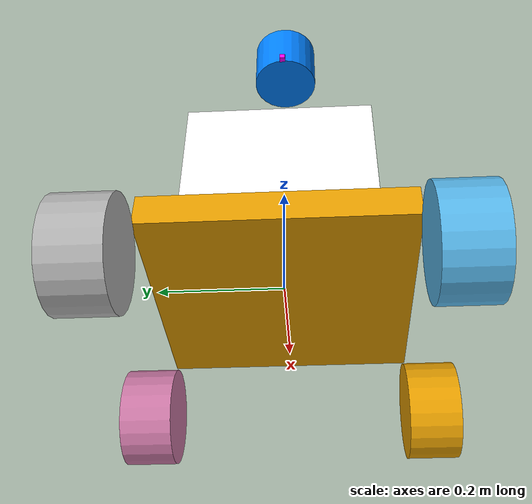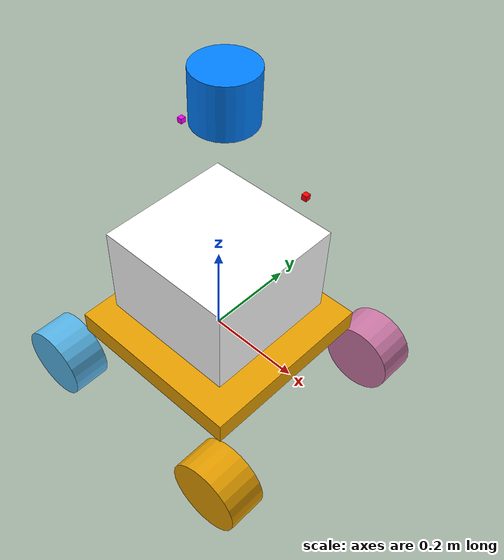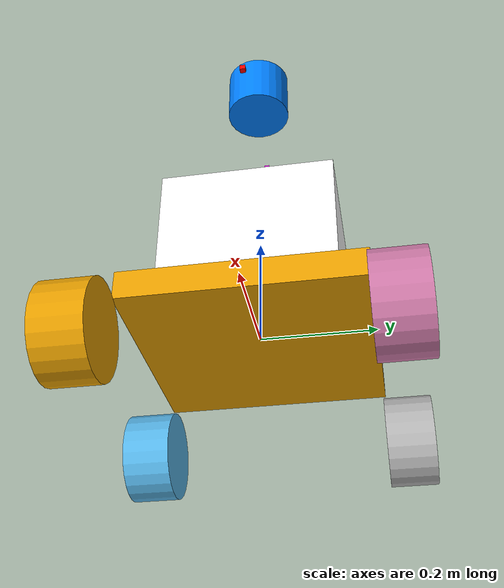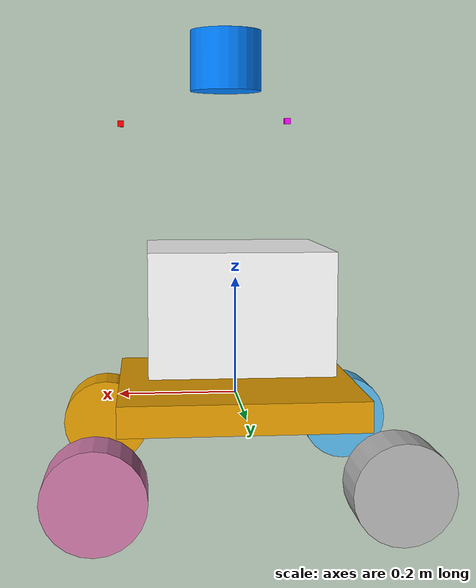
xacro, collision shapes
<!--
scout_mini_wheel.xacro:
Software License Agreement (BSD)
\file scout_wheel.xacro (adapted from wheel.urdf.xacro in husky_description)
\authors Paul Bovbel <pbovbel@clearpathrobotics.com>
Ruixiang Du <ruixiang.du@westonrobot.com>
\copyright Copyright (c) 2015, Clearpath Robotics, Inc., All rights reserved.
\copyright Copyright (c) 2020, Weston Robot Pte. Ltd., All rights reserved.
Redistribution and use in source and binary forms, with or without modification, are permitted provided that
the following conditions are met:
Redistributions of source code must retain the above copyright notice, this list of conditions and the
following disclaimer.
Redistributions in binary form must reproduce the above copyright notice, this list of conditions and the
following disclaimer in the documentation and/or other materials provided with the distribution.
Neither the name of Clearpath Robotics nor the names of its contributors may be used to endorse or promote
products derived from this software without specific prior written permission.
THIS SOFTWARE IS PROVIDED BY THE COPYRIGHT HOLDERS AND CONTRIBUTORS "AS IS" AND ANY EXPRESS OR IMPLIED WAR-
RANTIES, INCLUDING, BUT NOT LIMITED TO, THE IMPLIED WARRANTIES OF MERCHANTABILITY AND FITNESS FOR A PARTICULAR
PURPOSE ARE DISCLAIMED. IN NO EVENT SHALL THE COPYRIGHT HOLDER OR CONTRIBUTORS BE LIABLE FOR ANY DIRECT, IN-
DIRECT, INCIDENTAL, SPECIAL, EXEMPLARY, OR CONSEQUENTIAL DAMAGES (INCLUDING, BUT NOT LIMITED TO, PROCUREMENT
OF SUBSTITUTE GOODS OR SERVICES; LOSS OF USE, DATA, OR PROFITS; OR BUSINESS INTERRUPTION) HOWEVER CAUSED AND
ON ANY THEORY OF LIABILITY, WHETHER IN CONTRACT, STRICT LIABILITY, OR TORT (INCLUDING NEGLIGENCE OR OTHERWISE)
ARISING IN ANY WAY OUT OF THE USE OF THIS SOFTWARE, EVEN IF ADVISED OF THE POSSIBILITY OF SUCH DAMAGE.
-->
<?xml version="1.0"?>

<robot name="scout_mini"
    xmlns:xacro="http://ros.org/wiki/xacro">

    <xacro:arg name="robot_namespace" default="/" />

    <xacro:include filename="$(find scout_description)/urdf/scout_mini_wheel.xacro" />

    <!-- Variables -->
    <xacro:property name="M_PI" value="3.14159"/>

    <!-- Vehicle Geometries -->
    <xacro:property name="base_x_size" value="0.6200000" />
    <xacro:property name="base_y_size" value="0.585000" />
    <xacro:property name="base_z_size" value="0.235000" />

    <xacro:property name="wheelbase" value="0.463951"/>
    <xacro:property name="track" value="0.416503"/>
    <xacro:property name="wheel_vertical_offset" value="-0.100998" />

    <xacro:property name="wheel_diameter" value="0.16" />
    <xacro:property name="wheel_width" value="0.084" />

    <xacro:property name="wheel_length" value="0.8e-01" />
    <xacro:property name="wheel_radius" value="1.600e-01" />

    <!-- Base link -->
    <link name="base_link">
        <inertial>
            <origin
                xyz="0.0 0.0 0.0"
                rpy="0 0 0" />
            <mass
                value="10" />
            <inertia ixx="0.1354" ixy="0" ixz="0"
             iyy="0.1354" iyz="0" izz="0.2667"/>
        </inertial>
        <visual>
            <origin
                    xyz="0 0 0.0"
                    rpy="1.57 0 -1.57" />
            <geometry>
                <mesh filename="package://scout_description/meshes/scout_mini_base_link2.dae" />
            </geometry>
        </visual>
        <collision>
            <origin
                    xyz="0 0 0"
                    rpy="0 0 0" />
          <geometry>
              <box size="0.4 0.4 0.05"/>
          </geometry>
        </collision>
    </link>

    <link name="box_link">
        <inertial>
            <origin
                xyz="0.0 0.0 0.0"
                rpy="0 0 3.14159" />
            <mass
                value="5" />
            <inertia
                ixx="0.054166666667"
                ixy="0"
                ixz="0"
                iyy="0.075"
                iyz="0"
                izz="0.054166666667"/>
            </inertial>
        <visual>
            <origin
                    xyz="0.0 0.0 0.0"
                    rpy="0.0 0.0 0.0" />
            <geometry>
                <mesh filename="package://scout_description/meshes/box-parts/box.stl" />
            </geometry>
            <material name = "white">
            <color rgba="1 1 1 1" />
            </material>
        </visual>
        <collision>
            <origin
                    xyz="0 0 0.1"
                    rpy="1.57 0 1.57" />
          <geometry>
            <box size="0.3 0.2 0.3"/>
          </geometry>
        </collision>
    </link>

    <joint name="box_joint" type="fixed">
        <origin xyz="0 0 0.055" rpy="0 0 0" />
        <parent link="base_link" />
        <child link="box_link" />
    </joint>

    <link name="laser_link">
        <visual>
            <origin
                    xyz="0.0 0.0 0.0"
                    rpy="0.0 0.0 0.0" />
            <geometry>
                <mesh filename="package://scout_description/meshes/box-parts/lidar.stl" />
            </geometry>
            <material name = "cyan">
            <color rgba="0 0.5 1 1" />
            </material>
        </visual>
        <collision>
            <origin
                    xyz="0 0 0.31"
                    rpy="0 0 0" />
          <geometry>
                    <cylinder radius="0.06" length="0.1"/>
          </geometry>
        </collision>
    </link>

    <joint name="laser_joint" type="fixed">
        <origin xyz="0.015732 -0.001804 0.200816" rpy="0 0 0" />
        <parent link="box_link" />
        <child link="laser_link" />
    </joint>

    <link name="camera_link">
        <inertial>
            <origin
                xyz="0.0 0.0 0.0"
                rpy="0 0 0" />
            <mass
                value="0.1" />
            <inertia
                ixx="0.0088463"
                ixy="2.0356E-05"
                ixz="-0.00047464"
                iyy="0.0066478"
                iyz="-6.9288E-06"
                izz="0.01219" />
        </inertial>
        <visual>
            <origin
                    xyz="0.0 0.0 0.0"
                    rpy="0.0 0.0 0.0" />
            <geometry>
                <mesh filename="package://scout_description/meshes/box-parts/camera.stl" />
            </geometry>
            <material name = "red">
            <color rgba="1 0 0 1" />
            </material>
        </visual>
        <collision>
            <origin
                    xyz="0 0 0.31"
                    rpy="0 0 0" />
          <geometry>
                    <box size="0.01 0.01 0.01"/>
          </geometry>
        </collision>
    </link>

    <joint name="camera_joint" type="fixed">
        <origin xyz="0.192646 -0.001255 0.096" rpy="0 0 0" />
        <parent link="box_link" />
        <child link="camera_link" />
    </joint>

    <link name="camera_optical_link">
    </link>
    <joint name="camera_optical_joint" type="fixed">
        <origin xyz="0.01495 0 0.0125" rpy="0 0 0" />
        <parent link="camera_link" />
        <child link="camera_optical_link" />
    </joint>

    <link name="monitor_link">
        <inertial>
            <origin
                xyz="0.0 0.0 0.0"
                rpy="0 0 0" />
            <mass
                value="0.1" />
            <inertia
                ixx="0.0088463"
                ixy="2.0356E-05"
                ixz="-0.00047464"
                iyy="0.0066478"
                iyz="-6.9288E-06"
                izz="0.01219" />
        </inertial>
        <visual>
            <origin
                    xyz="0.0 0.0 0.0"
                    rpy="0.0 0.0 0.0" />
            <geometry>
                <mesh filename="package://scout_description/meshes/box-parts/monitor.stl" />
            </geometry>
            <material name = "purple">
            <color rgba="1 0 1 1" />
            </material>
        </visual>
        <collision>
            <origin
                    xyz="0 0 0.31"
                    rpy="0 0 0" />
          <geometry>
                    <box size="0.01 0.01 0.01"/>
          </geometry>
        </collision>
    </link>

    <joint name="monitor_joint" type="fixed">
        <origin xyz="-0.088892 -0.001255 0.101303" rpy="0 0 0" />
        <parent link="box_link" />
        <child link="monitor_link" />
    </joint>

    <!-- Scout wheel macros -->
    <!-- wheel labeled from 0 to 3, conter-clockwise, starting from front right wheel -->
    <!-- motor 1 and 2 (left side) are mechanically installed in a reversed direction -->
    <xacro:scout_mini_wheel wheel_prefix="front_left" wheel_diameter="${wheel_diameter}" wheel_width="${wheel_width}" axis="1">
        <origin xyz="${wheelbase/2} ${track/2} ${wheel_vertical_offset}" rpy="-1.57 0 0" />
    </xacro:scout_mini_wheel>
    <xacro:scout_mini_wheel wheel_prefix="rear_left" wheel_diameter="${wheel_diameter}" wheel_width="${wheel_width}" axis="1">
        <origin xyz="${-wheelbase/2} ${track/2} ${wheel_vertical_offset}" rpy="-1.57 0 0" />
    </xacro:scout_mini_wheel>
    <xacro:scout_mini_wheel wheel_prefix="front_right" wheel_diameter="${wheel_diameter}" wheel_width="${wheel_width}" axis="-1">
        <origin xyz="${wheelbase/2} ${-track/2} ${wheel_vertical_offset+0.001}" rpy="1.57 0 0" />
    </xacro:scout_mini_wheel>
    <xacro:scout_mini_wheel wheel_prefix="rear_right" wheel_diameter="${wheel_diameter}" wheel_width="${wheel_width}" axis="-1">
        <origin xyz="${-wheelbase/2} ${-track/2} ${wheel_vertical_offset+0.001}" rpy="1.57 0 0" />
    </xacro:scout_mini_wheel>

    <ros2_control name="GazeboSimSystem" type="system">
        <hardware>
            <plugin>gz_ros2_control/GazeboSimSystem</plugin>
        </hardware>
        <joint name="front_left_wheel">
	    <command_interface name="velocity">
                <param name="min">-10.0</param>
                <param name="max">10.0</param>
            </command_interface>
            <state_interface name="position"/>
            <state_interface name="velocity"/>
        </joint>
        <joint name="rear_left_wheel">
	    <command_interface name="velocity">
                <param name="min">-10.0</param>
                <param name="max">10.0</param>
            </command_interface>
            <state_interface name="position"/>
            <state_interface name="velocity"/>
        </joint>
        <joint name="front_right_wheel">
	    <command_interface name="velocity">
                <param name="min">-10.0</param>
                <param name="max">10.0</param>
            </command_interface>
            <state_interface name="position"/>
            <state_interface name="velocity"/>
        </joint>
        <joint name="rear_right_wheel">
	    <command_interface name="velocity">
                <param name="min">-10.0</param>
                <param name="max">10.0</param>
            </command_interface>
            <state_interface name="position"/>
            <state_interface name="velocity"/>
        </joint>
    </ros2_control>

    <!-- Gazebo definitions  -->
    <xacro:include filename="$(find scout_description)/urdf/scout_mini.gazebo" />
</robot>

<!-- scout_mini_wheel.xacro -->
<robot xmlns:xacro="http://ros.org/wiki/xacro" name="scout_wheel">

  <xacro:macro name="scout_mini_wheel" params="wheel_prefix wheel_diameter wheel_width axis *joint_pose">
    <xacro:property name="wheel_radius" value="${wheel_diameter / 2}" />
            <link name="${wheel_prefix}_wheel_link">
            <inertial>
                <mass value="3" />
                <origin xyz="0 0 0" />
                <inertia
                    ixx="0.006564" ixy="0" ixz="0"
                    iyy="0.006564" iyz="0"
                    izz="0.0096"/>
              </inertial>
            <visual>
                <origin xyz="0 0 0" rpy="0 0 0" />
                <geometry>
                    <mesh filename="package://scout_description/meshes/wheel.dae" />
                </geometry>
            </visual>
            <collision>
              <origin
                xyz="0 0 0.03"
                rpy="0 0 0" />
              <geometry>
                  <cylinder radius="0.08" length="0.084"/>

              </geometry>
            </collision>
        </link>

        <joint name="${wheel_prefix}_wheel" type="continuous">
            <parent link="base_link"/>
            <child link="${wheel_prefix}_wheel_link"/>
            <xacro:insert_block name="joint_pose"/>
            <axis xyz="0 0 ${axis}" rpy="0 0 0" />

            <dynamics damping="0.0" friction="0.0"/>
            <limit effort="1000" velocity="20"/>  <!-- High limits for fast turns -->

        </joint>

    <gazebo reference="${wheel_prefix}_wheel_link">
      <mu1>200.0</mu1>  <!-- High for no longitudinal slip (propulsion) -->
      <mu2>0.75</mu2>  <!-- High for lateral grip during turns (prevents sliding) -->
      <slip1>0.01</slip1>  <!-- Small torsional slip for realism/stability -->
      <slip2>0.01</slip2>  <!-- Lateral slip; tune higher (0.1) if turns feel too sticky -->
      <kp>1e7</kp>      <!-- Stiffness: prevents sinking -->
      <kd>10.0</kd>     <!-- Damping: reduces bounce; increased from 1.0 -->
      <fdir1>1 0 0</fdir1>
      <minDepth>0.005</minDepth>  <!-- Deeper contacts for better force transmission -->
      <maxContacts>10</maxContacts>
    </gazebo>
  </xacro:macro>

</robot>
